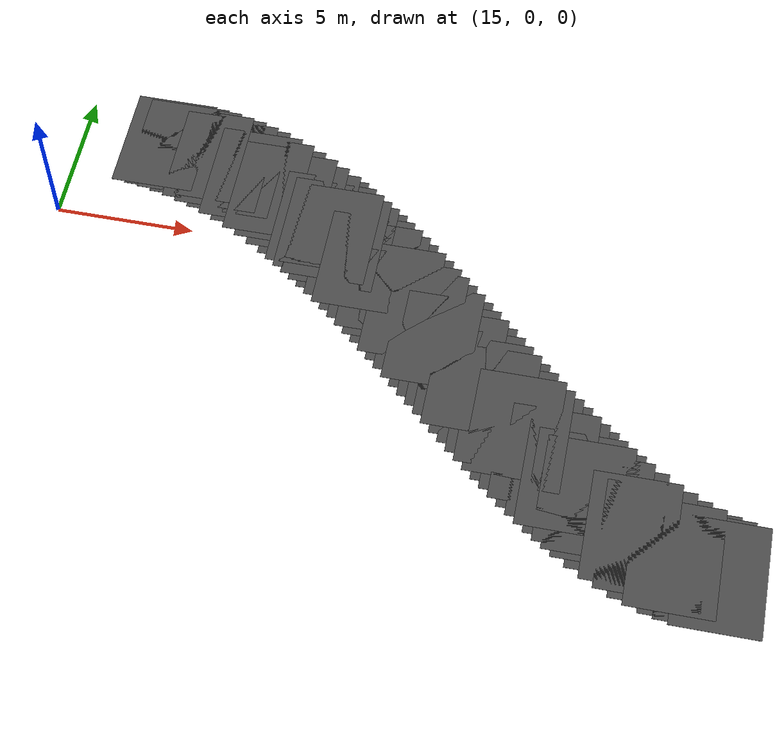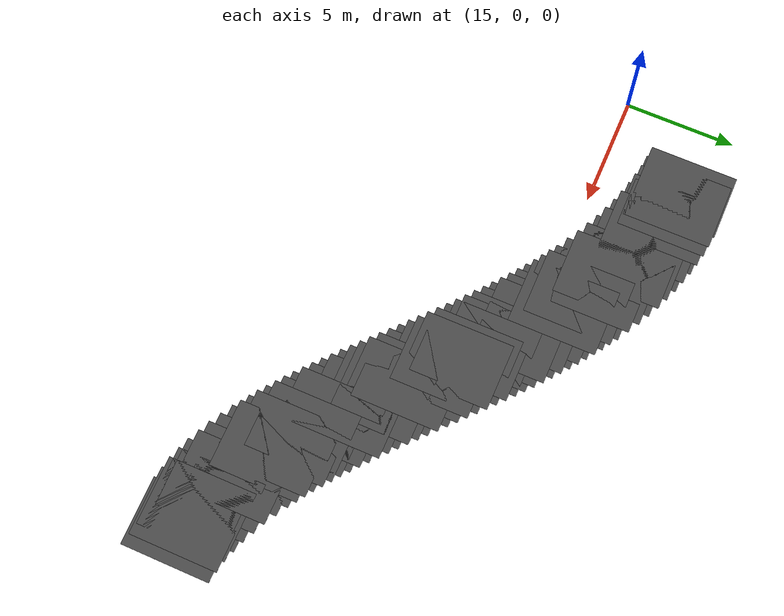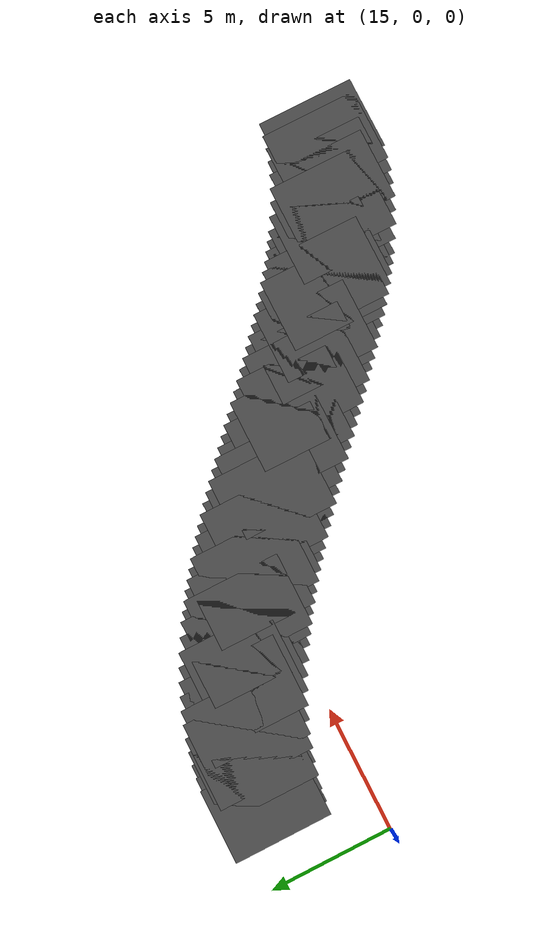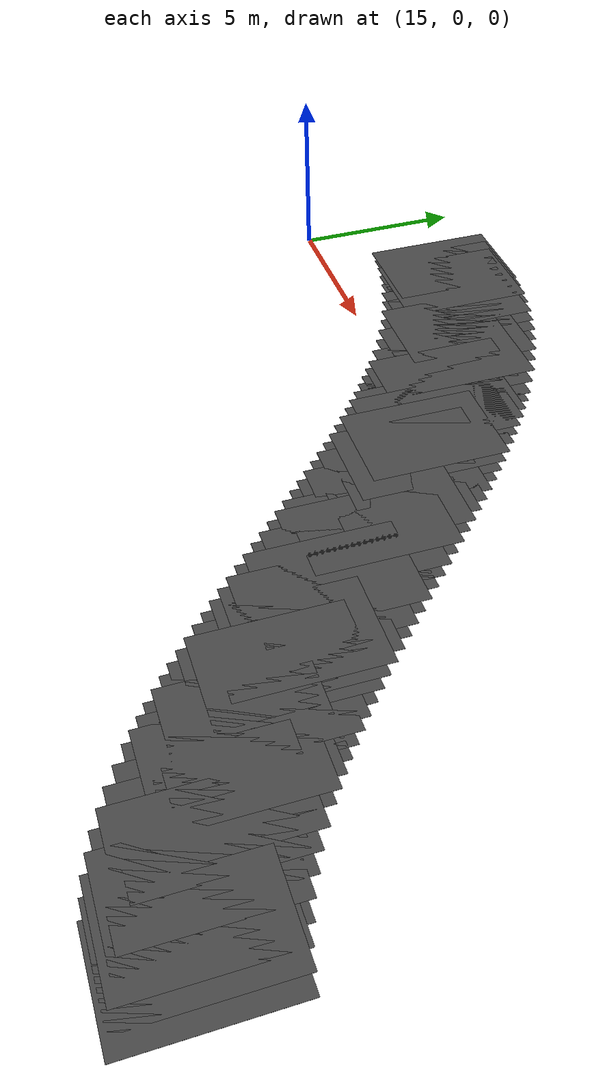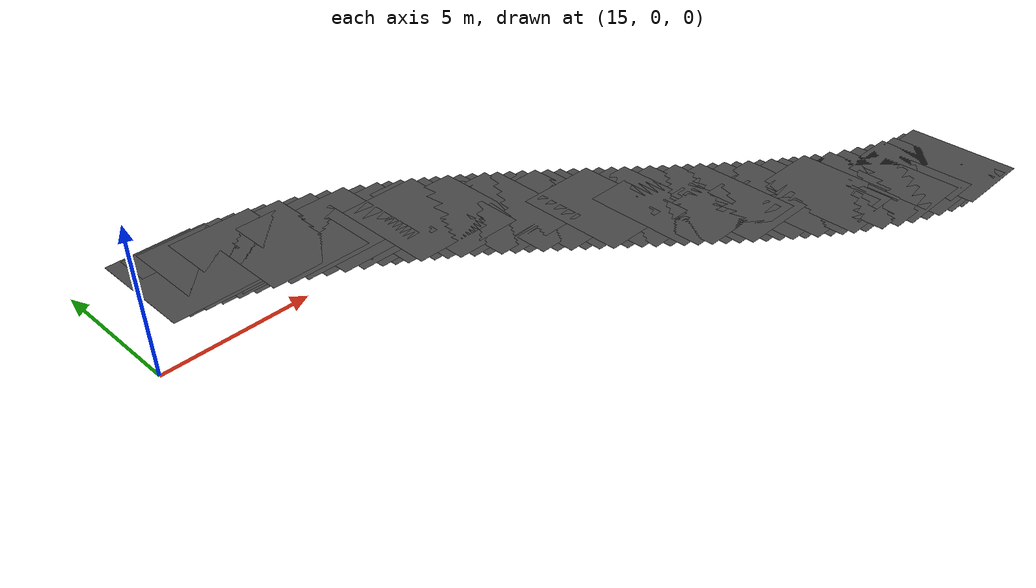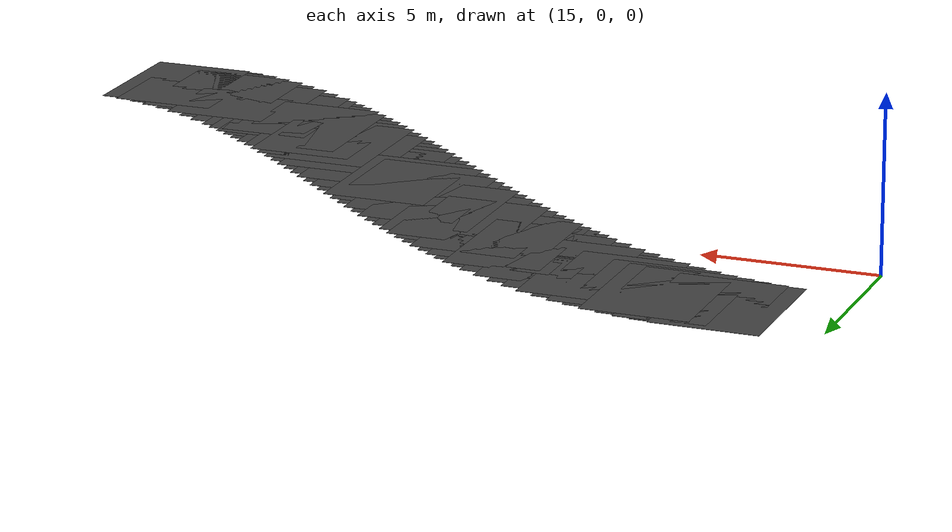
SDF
<sdf version="1.7">
 <world name="default">
  <model name="roadSegment_18_0">
   <static>1</static>
   <link name="link">
    <collision name="collision"><geometry><box><size>3 4 0.01</size></box></geometry></collision>
    <visual name="visual">
     <cast_shadows>0</cast_shadows>
     <geometry><box><size>3 4 0.01</size></box></geometry>
     <material>
      <script>
       <uri>model://asphalt_plane/materials/scripts</uri>
       <uri>model://asphalt_plane/materials/textures</uri>
       <name>vrc/asphalt</name>
      </script>
     </material>
    </visual>
   </link>
   <pose>18 3.73906 0 0 -0 0</pose>
  </model>
  <model name="roadSegment_18_1">
   <static>1</static>
   <link name="link">
    <collision name="collision"><geometry><box><size>3 4 0.01</size></box></geometry></collision>
    <visual name="visual">
     <cast_shadows>0</cast_shadows>
     <geometry><box><size>3 4 0.01</size></box></geometry>
     <material>
      <script>
       <uri>model://asphalt_plane/materials/scripts</uri>
       <uri>model://asphalt_plane/materials/textures</uri>
       <name>vrc/asphalt</name>
      </script>
     </material>
    </visual>
   </link>
   <pose>18.5 3.67046 0 0 -0 0</pose>
  </model>
  <model name="roadSegment_19_0">
   <static>1</static>
   <link name="link">
    <collision name="collision"><geometry><box><size>3 4 0.01</size></box></geometry></collision>
    <visual name="visual">
     <cast_shadows>0</cast_shadows>
     <geometry><box><size>3 4 0.01</size></box></geometry>
     <material>
      <script>
       <uri>model://asphalt_plane/materials/scripts</uri>
       <uri>model://asphalt_plane/materials/textures</uri>
       <name>vrc/asphalt</name>
      </script>
     </material>
    </visual>
   </link>
   <pose>19 3.60186 0 0 -0 0</pose>
  </model>
  <model name="roadSegment_19_1">
   <static>1</static>
   <link name="link">
    <collision name="collision"><geometry><box><size>3 4 0.01</size></box></geometry></collision>
    <visual name="visual">
     <cast_shadows>0</cast_shadows>
     <geometry><box><size>3 4 0.01</size></box></geometry>
     <material>
      <script>
       <uri>model://asphalt_plane/materials/scripts</uri>
       <uri>model://asphalt_plane/materials/textures</uri>
       <name>vrc/asphalt</name>
      </script>
     </material>
    </visual>
   </link>
   <pose>19.5 3.48782 0 0 -0 0</pose>
  </model>
  <model name="roadSegment_20_0">
   <static>1</static>
   <link name="link">
    <collision name="collision"><geometry><box><size>3 4 0.01</size></box></geometry></collision>
    <visual name="visual">
     <cast_shadows>0</cast_shadows>
     <geometry><box><size>3 4 0.01</size></box></geometry>
     <material>
      <script>
       <uri>model://asphalt_plane/materials/scripts</uri>
       <uri>model://asphalt_plane/materials/textures</uri>
       <name>vrc/asphalt</name>
      </script>
     </material>
    </visual>
   </link>
   <pose>20 3.37377 0 0 -0 0</pose>
  </model>
  <model name="roadSegment_20_1">
   <static>1</static>
   <link name="link">
    <collision name="collision"><geometry><box><size>3 4 0.01</size></box></geometry></collision>
    <visual name="visual">
     <cast_shadows>0</cast_shadows>
     <geometry><box><size>3 4 0.01</size></box></geometry>
     <material>
      <script>
       <uri>model://asphalt_plane/materials/scripts</uri>
       <uri>model://asphalt_plane/materials/textures</uri>
       <name>vrc/asphalt</name>
      </script>
     </material>
    </visual>
   </link>
   <pose>20.5 3.21335 0 0 -0 0</pose>
  </model>
  <model name="roadSegment_21_0">
   <static>1</static>
   <link name="link">
    <collision name="collision"><geometry><box><size>3 4 0.01</size></box></geometry></collision>
    <visual name="visual">
     <cast_shadows>0</cast_shadows>
     <geometry><box><size>3 4 0.01</size></box></geometry>
     <material>
      <script>
       <uri>model://asphalt_plane/materials/scripts</uri>
       <uri>model://asphalt_plane/materials/textures</uri>
       <name>vrc/asphalt</name>
      </script>
     </material>
    </visual>
   </link>
   <pose>21 3.05293 0 0 -0 0</pose>
  </model>
  <model name="roadSegment_21_1">
   <static>1</static>
   <link name="link">
    <collision name="collision"><geometry><box><size>3 4 0.01</size></box></geometry></collision>
    <visual name="visual">
     <cast_shadows>0</cast_shadows>
     <geometry><box><size>3 4 0.01</size></box></geometry>
     <material>
      <script>
       <uri>model://asphalt_plane/materials/scripts</uri>
       <uri>model://asphalt_plane/materials/textures</uri>
       <name>vrc/asphalt</name>
      </script>
     </material>
    </visual>
   </link>
   <pose>21.5 2.84618 0 0 -0 0</pose>
  </model>
  <model name="roadSegment_22_0">
   <static>1</static>
   <link name="link">
    <collision name="collision"><geometry><box><size>3 4 0.01</size></box></geometry></collision>
    <visual name="visual">
     <cast_shadows>0</cast_shadows>
     <geometry><box><size>3 4 0.01</size></box></geometry>
     <material>
      <script>
       <uri>model://asphalt_plane/materials/scripts</uri>
       <uri>model://asphalt_plane/materials/textures</uri>
       <name>vrc/asphalt</name>
      </script>
     </material>
    </visual>
   </link>
   <pose>22 2.63943 0 0 -0 0</pose>
  </model>
  <model name="roadSegment_22_1">
   <static>1</static>
   <link name="link">
    <collision name="collision"><geometry><box><size>3 4 0.01</size></box></geometry></collision>
    <visual name="visual">
     <cast_shadows>0</cast_shadows>
     <geometry><box><size>3 4 0.01</size></box></geometry>
     <material>
      <script>
       <uri>model://asphalt_plane/materials/scripts</uri>
       <uri>model://asphalt_plane/materials/textures</uri>
       <name>vrc/asphalt</name>
      </script>
     </material>
    </visual>
   </link>
   <pose>22.5 2.38741 0 0 -0 0</pose>
  </model>
  <model name="roadSegment_23_0">
   <static>1</static>
   <link name="link">
    <collision name="collision"><geometry><box><size>3 4 0.01</size></box></geometry></collision>
    <visual name="visual">
     <cast_shadows>0</cast_shadows>
     <geometry><box><size>3 4 0.01</size></box></geometry>
     <material>
      <script>
       <uri>model://asphalt_plane/materials/scripts</uri>
       <uri>model://asphalt_plane/materials/textures</uri>
       <name>vrc/asphalt</name>
      </script>
     </material>
    </visual>
   </link>
   <pose>23 2.1354 0 0 -0 0</pose>
  </model>
  <model name="roadSegment_23_1">
   <static>1</static>
   <link name="link">
    <collision name="collision"><geometry><box><size>3 4 0.01</size></box></geometry></collision>
    <visual name="visual">
     <cast_shadows>0</cast_shadows>
     <geometry><box><size>3 4 0.01</size></box></geometry>
     <material>
      <script>
       <uri>model://asphalt_plane/materials/scripts</uri>
       <uri>model://asphalt_plane/materials/textures</uri>
       <name>vrc/asphalt</name>
      </script>
     </material>
    </visual>
   </link>
   <pose>23.5 1.84022 0 0 -0 0</pose>
  </model>
  <model name="roadSegment_24_0">
   <static>1</static>
   <link name="link">
    <collision name="collision"><geometry><box><size>3 4 0.01</size></box></geometry></collision>
    <visual name="visual">
     <cast_shadows>0</cast_shadows>
     <geometry><box><size>3 4 0.01</size></box></geometry>
     <material>
      <script>
       <uri>model://asphalt_plane/materials/scripts</uri>
       <uri>model://asphalt_plane/materials/textures</uri>
       <name>vrc/asphalt</name>
      </script>
     </material>
    </visual>
   </link>
   <pose>24 1.54504 0 0 -0 0</pose>
  </model>
  <model name="roadSegment_24_1">
   <static>1</static>
   <link name="link">
    <collision name="collision"><geometry><box><size>3 4 0.01</size></box></geometry></collision>
    <visual name="visual">
     <cast_shadows>0</cast_shadows>
     <geometry><box><size>3 4 0.01</size></box></geometry>
     <material>
      <script>
       <uri>model://asphalt_plane/materials/scripts</uri>
       <uri>model://asphalt_plane/materials/textures</uri>
       <name>vrc/asphalt</name>
      </script>
     </material>
    </visual>
   </link>
   <pose>24.3333 1.32155 0 0 -0 0</pose>
  </model>
  <model name="roadSegment_24_2">
   <static>1</static>
   <link name="link">
    <collision name="collision"><geometry><box><size>3 4 0.01</size></box></geometry></collision>
    <visual name="visual">
     <cast_shadows>0</cast_shadows>
     <geometry><box><size>3 4 0.01</size></box></geometry>
     <material>
      <script>
       <uri>model://asphalt_plane/materials/scripts</uri>
       <uri>model://asphalt_plane/materials/textures</uri>
       <name>vrc/asphalt</name>
      </script>
     </material>
    </visual>
   </link>
   <pose>24.6667 1.09806 0 0 -0 0</pose>
  </model>
  <model name="roadSegment_25_0">
   <static>1</static>
   <link name="link">
    <collision name="collision"><geometry><box><size>3 4 0.01</size></box></geometry></collision>
    <visual name="visual">
     <cast_shadows>0</cast_shadows>
     <geometry><box><size>3 4 0.01</size></box></geometry>
     <material>
      <script>
       <uri>model://asphalt_plane/materials/scripts</uri>
       <uri>model://asphalt_plane/materials/textures</uri>
       <name>vrc/asphalt</name>
      </script>
     </material>
    </visual>
   </link>
   <pose>25 0.874572 0 0 -0 0</pose>
  </model>
  <model name="roadSegment_25_1">
   <static>1</static>
   <link name="link">
    <collision name="collision"><geometry><box><size>3 4 0.01</size></box></geometry></collision>
    <visual name="visual">
     <cast_shadows>0</cast_shadows>
     <geometry><box><size>3 4 0.01</size></box></geometry>
     <material>
      <script>
       <uri>model://asphalt_plane/materials/scripts</uri>
       <uri>model://asphalt_plane/materials/textures</uri>
       <name>vrc/asphalt</name>
      </script>
     </material>
    </visual>
   </link>
   <pose>25.3333 0.627124 0 0 -0 0</pose>
  </model>
  <model name="roadSegment_25_2">
   <static>1</static>
   <link name="link">
    <collision name="collision"><geometry><box><size>3 4 0.01</size></box></geometry></collision>
    <visual name="visual">
     <cast_shadows>0</cast_shadows>
     <geometry><box><size>3 4 0.01</size></box></geometry>
     <material>
      <script>
       <uri>model://asphalt_plane/materials/scripts</uri>
       <uri>model://asphalt_plane/materials/textures</uri>
       <name>vrc/asphalt</name>
      </script>
     </material>
    </visual>
   </link>
   <pose>25.6667 0.379676 0 0 -0 0</pose>
  </model>
  <model name="roadSegment_26_0">
   <static>1</static>
   <link name="link">
    <collision name="collision"><geometry><box><size>3 4 0.01</size></box></geometry></collision>
    <visual name="visual">
     <cast_shadows>0</cast_shadows>
     <geometry><box><size>3 4 0.01</size></box></geometry>
     <material>
      <script>
       <uri>model://asphalt_plane/materials/scripts</uri>
       <uri>model://asphalt_plane/materials/textures</uri>
       <name>vrc/asphalt</name>
      </script>
     </material>
    </visual>
   </link>
   <pose>26 0.132228 0 0 -0 0</pose>
  </model>
  <model name="roadSegment_26_1">
   <static>1</static>
   <link name="link">
    <collision name="collision"><geometry><box><size>3 4 0.01</size></box></geometry></collision>
    <visual name="visual">
     <cast_shadows>0</cast_shadows>
     <geometry><box><size>3 4 0.01</size></box></geometry>
     <material>
      <script>
       <uri>model://asphalt_plane/materials/scripts</uri>
       <uri>model://asphalt_plane/materials/textures</uri>
       <name>vrc/asphalt</name>
      </script>
     </material>
    </visual>
   </link>
   <pose>26.3333 -0.13581 0 0 -0 0</pose>
  </model>
  <model name="roadSegment_26_2">
   <static>1</static>
   <link name="link">
    <collision name="collision"><geometry><box><size>3 4 0.01</size></box></geometry></collision>
    <visual name="visual">
     <cast_shadows>0</cast_shadows>
     <geometry><box><size>3 4 0.01</size></box></geometry>
     <material>
      <script>
       <uri>model://asphalt_plane/materials/scripts</uri>
       <uri>model://asphalt_plane/materials/textures</uri>
       <name>vrc/asphalt</name>
      </script>
     </material>
    </visual>
   </link>
   <pose>26.6667 -0.403848 0 0 -0 0</pose>
  </model>
  <model name="roadSegment_27_0">
   <static>1</static>
   <link name="link">
    <collision name="collision"><geometry><box><size>3 4 0.01</size></box></geometry></collision>
    <visual name="visual">
     <cast_shadows>0</cast_shadows>
     <geometry><box><size>3 4 0.01</size></box></geometry>
     <material>
      <script>
       <uri>model://asphalt_plane/materials/scripts</uri>
       <uri>model://asphalt_plane/materials/textures</uri>
       <name>vrc/asphalt</name>
      </script>
     </material>
    </visual>
   </link>
   <pose>27 -0.671887 0 0 -0 0</pose>
  </model>
  <model name="roadSegment_27_1">
   <static>1</static>
   <link name="link">
    <collision name="collision"><geometry><box><size>3 4 0.01</size></box></geometry></collision>
    <visual name="visual">
     <cast_shadows>0</cast_shadows>
     <geometry><box><size>3 4 0.01</size></box></geometry>
     <material>
      <script>
       <uri>model://asphalt_plane/materials/scripts</uri>
       <uri>model://asphalt_plane/materials/textures</uri>
       <name>vrc/asphalt</name>
      </script>
     </material>
    </visual>
   </link>
   <pose>27.3333 -0.956562 0 0 -0 0</pose>
  </model>
  <model name="roadSegment_27_2">
   <static>1</static>
   <link name="link">
    <collision name="collision"><geometry><box><size>3 4 0.01</size></box></geometry></collision>
    <visual name="visual">
     <cast_shadows>0</cast_shadows>
     <geometry><box><size>3 4 0.01</size></box></geometry>
     <material>
      <script>
       <uri>model://asphalt_plane/materials/scripts</uri>
       <uri>model://asphalt_plane/materials/textures</uri>
       <name>vrc/asphalt</name>
      </script>
     </material>
    </visual>
   </link>
   <pose>27.6667 -1.24124 0 0 -0 0</pose>
  </model>
  <model name="roadSegment_28_0">
   <static>1</static>
   <link name="link">
    <collision name="collision"><geometry><box><size>3 4 0.01</size></box></geometry></collision>
    <visual name="visual">
     <cast_shadows>0</cast_shadows>
     <geometry><box><size>3 4 0.01</size></box></geometry>
     <material>
      <script>
       <uri>model://asphalt_plane/materials/scripts</uri>
       <uri>model://asphalt_plane/materials/textures</uri>
       <name>vrc/asphalt</name>
      </script>
     </material>
    </visual>
   </link>
   <pose>28 -1.52591 0 0 -0 0</pose>
  </model>
  <model name="roadSegment_28_1">
   <static>1</static>
   <link name="link">
    <collision name="collision"><geometry><box><size>3 4 0.01</size></box></geometry></collision>
    <visual name="visual">
     <cast_shadows>0</cast_shadows>
     <geometry><box><size>3 4 0.01</size></box></geometry>
     <material>
      <script>
       <uri>model://asphalt_plane/materials/scripts</uri>
       <uri>model://asphalt_plane/materials/textures</uri>
       <name>vrc/asphalt</name>
      </script>
     </material>
    </visual>
   </link>
   <pose>28.3333 -1.82275 0 0 -0 0</pose>
  </model>
  <model name="roadSegment_28_2">
   <static>1</static>
   <link name="link">
    <collision name="collision"><geometry><box><size>3 4 0.01</size></box></geometry></collision>
    <visual name="visual">
     <cast_shadows>0</cast_shadows>
     <geometry><box><size>3 4 0.01</size></box></geometry>
     <material>
      <script>
       <uri>model://asphalt_plane/materials/scripts</uri>
       <uri>model://asphalt_plane/materials/textures</uri>
       <name>vrc/asphalt</name>
      </script>
     </material>
    </visual>
   </link>
   <pose>28.6667 -2.11958 0 0 -0 0</pose>
  </model>
  <model name="roadSegment_29_0">
   <static>1</static>
   <link name="link">
    <collision name="collision"><geometry><box><size>3 4 0.01</size></box></geometry></collision>
    <visual name="visual">
     <cast_shadows>0</cast_shadows>
     <geometry><box><size>3 4 0.01</size></box></geometry>
     <material>
      <script>
       <uri>model://asphalt_plane/materials/scripts</uri>
       <uri>model://asphalt_plane/materials/textures</uri>
       <name>vrc/asphalt</name>
      </script>
     </material>
    </visual>
   </link>
   <pose>29 -2.41641 0 0 -0 0</pose>
  </model>
  <model name="roadSegment_29_1">
   <static>1</static>
   <link name="link">
    <collision name="collision"><geometry><box><size>3 4 0.01</size></box></geometry></collision>
    <visual name="visual">
     <cast_shadows>0</cast_shadows>
     <geometry><box><size>3 4 0.01</size></box></geometry>
     <material>
      <script>
       <uri>model://asphalt_plane/materials/scripts</uri>
       <uri>model://asphalt_plane/materials/textures</uri>
       <name>vrc/asphalt</name>
      </script>
     </material>
    </visual>
   </link>
   <pose>29.3333 -2.72047 0 0 -0 0</pose>
  </model>
  <model name="roadSegment_29_2">
   <static>1</static>
   <link name="link">
    <collision name="collision"><geometry><box><size>3 4 0.01</size></box></geometry></collision>
    <visual name="visual">
     <cast_shadows>0</cast_shadows>
     <geometry><box><size>3 4 0.01</size></box></geometry>
     <material>
      <script>
       <uri>model://asphalt_plane/materials/scripts</uri>
       <uri>model://asphalt_plane/materials/textures</uri>
       <name>vrc/asphalt</name>
      </script>
     </material>
    </visual>
   </link>
   <pose>29.6667 -3.02453 0 0 -0 0</pose>
  </model>
  <model name="roadSegment_30_0">
   <static>1</static>
   <link name="link">
    <collision name="collision"><geometry><box><size>3 4 0.01</size></box></geometry></collision>
    <visual name="visual">
     <cast_shadows>0</cast_shadows>
     <geometry><box><size>3 4 0.01</size></box></geometry>
     <material>
      <script>
       <uri>model://asphalt_plane/materials/scripts</uri>
       <uri>model://asphalt_plane/materials/textures</uri>
       <name>vrc/asphalt</name>
      </script>
     </material>
    </visual>
   </link>
   <pose>30 -3.32859 0 0 -0 0</pose>
  </model>
  <model name="roadSegment_30_1">
   <static>1</static>
   <link name="link">
    <collision name="collision"><geometry><box><size>3 4 0.01</size></box></geometry></collision>
    <visual name="visual">
     <cast_shadows>0</cast_shadows>
     <geometry><box><size>3 4 0.01</size></box></geometry>
     <material>
      <script>
       <uri>model://asphalt_plane/materials/scripts</uri>
       <uri>model://asphalt_plane/materials/textures</uri>
       <name>vrc/asphalt</name>
      </script>
     </material>
    </visual>
   </link>
   <pose>30.3333 -3.63456 0 0 -0 0</pose>
  </model>
  <model name="roadSegment_30_2">
   <static>1</static>
   <link name="link">
    <collision name="collision"><geometry><box><size>3 4 0.01</size></box></geometry></collision>
    <visual name="visual">
     <cast_shadows>0</cast_shadows>
     <geometry><box><size>3 4 0.01</size></box></geometry>
     <material>
      <script>
       <uri>model://asphalt_plane/materials/scripts</uri>
       <uri>model://asphalt_plane/materials/textures</uri>
       <name>vrc/asphalt</name>
      </script>
     </material>
    </visual>
   </link>
   <pose>30.6667 -3.94054 0 0 -0 0</pose>
  </model>
  <model name="roadSegment_31_0">
   <static>1</static>
   <link name="link">
    <collision name="collision"><geometry><box><size>3 4 0.01</size></box></geometry></collision>
    <visual name="visual">
     <cast_shadows>0</cast_shadows>
     <geometry><box><size>3 4 0.01</size></box></geometry>
     <material>
      <script>
       <uri>model://asphalt_plane/materials/scripts</uri>
       <uri>model://asphalt_plane/materials/textures</uri>
       <name>vrc/asphalt</name>
      </script>
     </material>
    </visual>
   </link>
   <pose>31 -4.24651 0 0 -0 0</pose>
  </model>
  <model name="roadSegment_31_1">
   <static>1</static>
   <link name="link">
    <collision name="collision"><geometry><box><size>3 4 0.01</size></box></geometry></collision>
    <visual name="visual">
     <cast_shadows>0</cast_shadows>
     <geometry><box><size>3 4 0.01</size></box></geometry>
     <material>
      <script>
       <uri>model://asphalt_plane/materials/scripts</uri>
       <uri>model://asphalt_plane/materials/textures</uri>
       <name>vrc/asphalt</name>
      </script>
     </material>
    </visual>
   </link>
   <pose>31.3333 -4.54881 0 0 -0 0</pose>
  </model>
  <model name="roadSegment_31_2">
   <static>1</static>
   <link name="link">
    <collision name="collision"><geometry><box><size>3 4 0.01</size></box></geometry></collision>
    <visual name="visual">
     <cast_shadows>0</cast_shadows>
     <geometry><box><size>3 4 0.01</size></box></geometry>
     <material>
      <script>
       <uri>model://asphalt_plane/materials/scripts</uri>
       <uri>model://asphalt_plane/materials/textures</uri>
       <name>vrc/asphalt</name>
      </script>
     </material>
    </visual>
   </link>
   <pose>31.6667 -4.8511 0 0 -0 0</pose>
  </model>
  <model name="roadSegment_32_0">
   <static>1</static>
   <link name="link">
    <collision name="collision"><geometry><box><size>3 4 0.01</size></box></geometry></collision>
    <visual name="visual">
     <cast_shadows>0</cast_shadows>
     <geometry><box><size>3 4 0.01</size></box></geometry>
     <material>
      <script>
       <uri>model://asphalt_plane/materials/scripts</uri>
       <uri>model://asphalt_plane/materials/textures</uri>
       <name>vrc/asphalt</name>
      </script>
     </material>
    </visual>
   </link>
   <pose>32 -5.1534 0 0 -0 0</pose>
  </model>
  <model name="roadSegment_32_1">
   <static>1</static>
   <link name="link">
    <collision name="collision"><geometry><box><size>3 4 0.01</size></box></geometry></collision>
    <visual name="visual">
     <cast_shadows>0</cast_shadows>
     <geometry><box><size>3 4 0.01</size></box></geometry>
     <material>
      <script>
       <uri>model://asphalt_plane/materials/scripts</uri>
       <uri>model://asphalt_plane/materials/textures</uri>
       <name>vrc/asphalt</name>
      </script>
     </material>
    </visual>
   </link>
   <pose>32.3333 -5.44624 0 0 -0 0</pose>
  </model>
  <model name="roadSegment_32_2">
   <static>1</static>
   <link name="link">
    <collision name="collision"><geometry><box><size>3 4 0.01</size></box></geometry></collision>
    <visual name="visual">
     <cast_shadows>0</cast_shadows>
     <geometry><box><size>3 4 0.01</size></box></geometry>
     <material>
      <script>
       <uri>model://asphalt_plane/materials/scripts</uri>
       <uri>model://asphalt_plane/materials/textures</uri>
       <name>vrc/asphalt</name>
      </script>
     </material>
    </visual>
   </link>
   <pose>32.6667 -5.73907 0 0 -0 0</pose>
  </model>
  <model name="roadSegment_33_0">
   <static>1</static>
   <link name="link">
    <collision name="collision"><geometry><box><size>3 4 0.01</size></box></geometry></collision>
    <visual name="visual">
     <cast_shadows>0</cast_shadows>
     <geometry><box><size>3 4 0.01</size></box></geometry>
     <material>
      <script>
       <uri>model://asphalt_plane/materials/scripts</uri>
       <uri>model://asphalt_plane/materials/textures</uri>
       <name>vrc/asphalt</name>
      </script>
     </material>
    </visual>
   </link>
   <pose>33 -6.03191 0 0 -0 0</pose>
  </model>
  <model name="roadSegment_33_1">
   <static>1</static>
   <link name="link">
    <collision name="collision"><geometry><box><size>3 4 0.01</size></box></geometry></collision>
    <visual name="visual">
     <cast_shadows>0</cast_shadows>
     <geometry><box><size>3 4 0.01</size></box></geometry>
     <material>
      <script>
       <uri>model://asphalt_plane/materials/scripts</uri>
       <uri>model://asphalt_plane/materials/textures</uri>
       <name>vrc/asphalt</name>
      </script>
     </material>
    </visual>
   </link>
   <pose>33.3333 -6.30942 0 0 -0 0</pose>
  </model>
  <model name="roadSegment_33_2">
   <static>1</static>
   <link name="link">
    <collision name="collision"><geometry><box><size>3 4 0.01</size></box></geometry></collision>
    <visual name="visual">
     <cast_shadows>0</cast_shadows>
     <geometry><box><size>3 4 0.01</size></box></geometry>
     <material>
      <script>
       <uri>model://asphalt_plane/materials/scripts</uri>
       <uri>model://asphalt_plane/materials/textures</uri>
       <name>vrc/asphalt</name>
      </script>
     </material>
    </visual>
   </link>
   <pose>33.6667 -6.58693 0 0 -0 0</pose>
  </model>
  <model name="roadSegment_34_0">
   <static>1</static>
   <link name="link">
    <collision name="collision"><geometry><box><size>3 4 0.01</size></box></geometry></collision>
    <visual name="visual">
     <cast_shadows>0</cast_shadows>
     <geometry><box><size>3 4 0.01</size></box></geometry>
     <material>
      <script>
       <uri>model://asphalt_plane/materials/scripts</uri>
       <uri>model://asphalt_plane/materials/textures</uri>
       <name>vrc/asphalt</name>
      </script>
     </material>
    </visual>
   </link>
   <pose>34 -6.86444 0 0 -0 0</pose>
  </model>
  <model name="roadSegment_34_1">
   <static>1</static>
   <link name="link">
    <collision name="collision"><geometry><box><size>3 4 0.01</size></box></geometry></collision>
    <visual name="visual">
     <cast_shadows>0</cast_shadows>
     <geometry><box><size>3 4 0.01</size></box></geometry>
     <material>
      <script>
       <uri>model://asphalt_plane/materials/scripts</uri>
       <uri>model://asphalt_plane/materials/textures</uri>
       <name>vrc/asphalt</name>
      </script>
     </material>
    </visual>
   </link>
   <pose>34.3333 -7.12079 0 0 -0 0</pose>
  </model>
  <model name="roadSegment_34_2">
   <static>1</static>
   <link name="link">
    <collision name="collision"><geometry><box><size>3 4 0.01</size></box></geometry></collision>
    <visual name="visual">
     <cast_shadows>0</cast_shadows>
     <geometry><box><size>3 4 0.01</size></box></geometry>
     <material>
      <script>
       <uri>model://asphalt_plane/materials/scripts</uri>
       <uri>model://asphalt_plane/materials/textures</uri>
       <name>vrc/asphalt</name>
      </script>
     </material>
    </visual>
   </link>
   <pose>34.6667 -7.37714 0 0 -0 0</pose>
  </model>
  <model name="roadSegment_35_0">
   <static>1</static>
   <link name="link">
    <collision name="collision"><geometry><box><size>3 4 0.01</size></box></geometry></collision>
    <visual name="visual">
     <cast_shadows>0</cast_shadows>
     <geometry><box><size>3 4 0.01</size></box></geometry>
     <material>
      <script>
       <uri>model://asphalt_plane/materials/scripts</uri>
       <uri>model://asphalt_plane/materials/textures</uri>
       <name>vrc/asphalt</name>
      </script>
     </material>
    </visual>
   </link>
   <pose>35 -7.63349 0 0 -0 0</pose>
  </model>
  <model name="roadSegment_35_1">
   <static>1</static>
   <link name="link">
    <collision name="collision"><geometry><box><size>3 4 0.01</size></box></geometry></collision>
    <visual name="visual">
     <cast_shadows>0</cast_shadows>
     <geometry><box><size>3 4 0.01</size></box></geometry>
     <material>
      <script>
       <uri>model://asphalt_plane/materials/scripts</uri>
       <uri>model://asphalt_plane/materials/textures</uri>
       <name>vrc/asphalt</name>
      </script>
     </material>
    </visual>
   </link>
   <pose>35.3333 -7.86296 0 0 -0 0</pose>
  </model>
  <model name="roadSegment_35_2">
   <static>1</static>
   <link name="link">
    <collision name="collision"><geometry><box><size>3 4 0.01</size></box></geometry></collision>
    <visual name="visual">
     <cast_shadows>0</cast_shadows>
     <geometry><box><size>3 4 0.01</size></box></geometry>
     <material>
      <script>
       <uri>model://asphalt_plane/materials/scripts</uri>
       <uri>model://asphalt_plane/materials/textures</uri>
       <name>vrc/asphalt</name>
      </script>
     </material>
    </visual>
   </link>
   <pose>35.6667 -8.09244 0 0 -0 0</pose>
  </model>
  <model name="roadSegment_36_0">
   <static>1</static>
   <link name="link">
    <collision name="collision"><geometry><box><size>3 4 0.01</size></box></geometry></collision>
    <visual name="visual">
     <cast_shadows>0</cast_shadows>
     <geometry><box><size>3 4 0.01</size></box></geometry>
     <material>
      <script>
       <uri>model://asphalt_plane/materials/scripts</uri>
       <uri>model://asphalt_plane/materials/textures</uri>
       <name>vrc/asphalt</name>
      </script>
     </material>
    </visual>
   </link>
   <pose>36 -8.32192 0 0 -0 0</pose>
  </model>
  <model name="roadSegment_36_1">
   <static>1</static>
   <link name="link">
    <collision name="collision"><geometry><box><size>3 4 0.01</size></box></geometry></collision>
    <visual name="visual">
     <cast_shadows>0</cast_shadows>
     <geometry><box><size>3 4 0.01</size></box></geometry>
     <material>
      <script>
       <uri>model://asphalt_plane/materials/scripts</uri>
       <uri>model://asphalt_plane/materials/textures</uri>
       <name>vrc/asphalt</name>
      </script>
     </material>
    </visual>
   </link>
   <pose>36.5 -8.61764 0 0 -0 0</pose>
  </model>
  <model name="roadSegment_37_0">
   <static>1</static>
   <link name="link">
    <collision name="collision"><geometry><box><size>3 4 0.01</size></box></geometry></collision>
    <visual name="visual">
     <cast_shadows>0</cast_shadows>
     <geometry><box><size>3 4 0.01</size></box></geometry>
     <material>
      <script>
       <uri>model://asphalt_plane/materials/scripts</uri>
       <uri>model://asphalt_plane/materials/textures</uri>
       <name>vrc/asphalt</name>
      </script>
     </material>
    </visual>
   </link>
   <pose>37 -8.91337 0 0 -0 0</pose>
  </model>
  <model name="roadSegment_37_1">
   <static>1</static>
   <link name="link">
    <collision name="collision"><geometry><box><size>3 4 0.01</size></box></geometry></collision>
    <visual name="visual">
     <cast_shadows>0</cast_shadows>
     <geometry><box><size>3 4 0.01</size></box></geometry>
     <material>
      <script>
       <uri>model://asphalt_plane/materials/scripts</uri>
       <uri>model://asphalt_plane/materials/textures</uri>
       <name>vrc/asphalt</name>
      </script>
     </material>
    </visual>
   </link>
   <pose>37.5 -9.15295 0 0 -0 0</pose>
  </model>
  <model name="roadSegment_38_0">
   <static>1</static>
   <link name="link">
    <collision name="collision"><geometry><box><size>3 4 0.01</size></box></geometry></collision>
    <visual name="visual">
     <cast_shadows>0</cast_shadows>
     <geometry><box><size>3 4 0.01</size></box></geometry>
     <material>
      <script>
       <uri>model://asphalt_plane/materials/scripts</uri>
       <uri>model://asphalt_plane/materials/textures</uri>
       <name>vrc/asphalt</name>
      </script>
     </material>
    </visual>
   </link>
   <pose>38 -9.39252 0 0 -0 0</pose>
  </model>
  <model name="roadSegment_38_1">
   <static>1</static>
   <link name="link">
    <collision name="collision"><geometry><box><size>3 4 0.01</size></box></geometry></collision>
    <visual name="visual">
     <cast_shadows>0</cast_shadows>
     <geometry><box><size>3 4 0.01</size></box></geometry>
     <material>
      <script>
       <uri>model://asphalt_plane/materials/scripts</uri>
       <uri>model://asphalt_plane/materials/textures</uri>
       <name>vrc/asphalt</name>
      </script>
     </material>
    </visual>
   </link>
   <pose>38.5 -9.56899 0 0 -0 0</pose>
  </model>
  <model name="roadSegment_39_0">
   <static>1</static>
   <link name="link">
    <collision name="collision"><geometry><box><size>3 4 0.01</size></box></geometry></collision>
    <visual name="visual">
     <cast_shadows>0</cast_shadows>
     <geometry><box><size>3 4 0.01</size></box></geometry>
     <material>
      <script>
       <uri>model://asphalt_plane/materials/scripts</uri>
       <uri>model://asphalt_plane/materials/textures</uri>
       <name>vrc/asphalt</name>
      </script>
     </material>
    </visual>
   </link>
   <pose>39 -9.74546 0 0 -0 0</pose>
  </model>
  <model name="roadSegment_39_1">
   <static>1</static>
   <link name="link">
    <collision name="collision"><geometry><box><size>3 4 0.01</size></box></geometry></collision>
    <visual name="visual">
     <cast_shadows>0</cast_shadows>
     <geometry><box><size>3 4 0.01</size></box></geometry>
     <material>
      <script>
       <uri>model://asphalt_plane/materials/scripts</uri>
       <uri>model://asphalt_plane/materials/textures</uri>
       <name>vrc/asphalt</name>
      </script>
     </material>
    </visual>
   </link>
   <pose>39.5 -9.8527 0 0 -0 0</pose>
  </model>
  <model name="roadSegment_40_0">
   <static>1</static>
   <link name="link">
    <collision name="collision"><geometry><box><size>3 4 0.01</size></box></geometry></collision>
    <visual name="visual">
     <cast_shadows>0</cast_shadows>
     <geometry><box><size>3 4 0.01</size></box></geometry>
     <material>
      <script>
       <uri>model://asphalt_plane/materials/scripts</uri>
       <uri>model://asphalt_plane/materials/textures</uri>
       <name>vrc/asphalt</name>
      </script>
     </material>
    </visual>
   </link>
   <pose>40 -9.95995 0 0 -0 0</pose>
  </model>
 </world>
</sdf>
